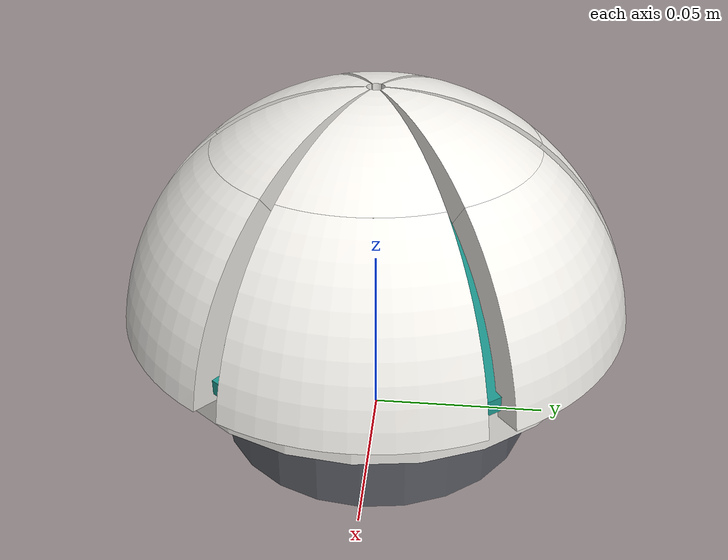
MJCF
<mujoco model="bloom"><compiler angle="radian" autolimits="true" meshdir="."/>
<asset><mesh name="petal_prox" file="petal_prox.obj"/><mesh name="petal_dist" file="petal_dist.obj"/></asset>
<default><default class="bloom"><joint type="hinge" damping="0.05" armature="0.0005"/><geom condim="4" contype="1" conaffinity="2" friction="1.0 0.02 0.001" solref="0.005 1" solimp="0.9 0.97 0.001"/>
<position kp="40" kv="1.5" forcelimited="true" forcerange="-1.5 1.5"/></default></default>
<worldbody><body name="mount" childclass="bloom">
<geom type="cylinder" size="0.045 0.015" pos="0 0 0.015" rgba="0.36 0.37 0.40 1" mass="0.4"/>
<geom type="cylinder" size="0.062 0.006" pos="0 0 0.0360" rgba="0.95 0.94 0.92 1" mass="0.2"/>
<geom type="cylinder" size="0.063 0.002" pos="0 0 0.0430" rgba="0.12 0.62 0.58 1" contype="0" conaffinity="0" mass="0.001"/>
<geom name="core" type="sphere" size="0.028" pos="0 0 0.030" rgba="0.15 0.16 0.19 1" mass="0.25"/>
<site name="eye" pos="0 0 0.030" size="0.004" rgba="0.12 0.62 0.58 1"/>
<body name="p0_prox" pos="0.06932 0.00000 0.03974" euler="0 0 0.00000">
<joint name="p0_j1" axis="0 1 0" range="-0.7 1.7"/>
<geom type="mesh" mesh="petal_prox" rgba="0.95 0.94 0.92 1" mass="0.05"/>
<geom type="sphere" size="0.014" pos="-0.00567 0.00000 0.00771" rgba="0 0 0 0" mass="0.01"/>
<geom type="sphere" size="0.014" pos="-0.01216 0.00000 0.02326" rgba="0 0 0 0" mass="0.01"/>
<geom type="sphere" size="0.014" pos="-0.02238 0.00000 0.03665" rgba="0 0 0 0" mass="0.01"/>
<body name="p0_dist" pos="-0.02622 0.00000 0.04542"><joint name="p0_j2" axis="0 1 0" range="-0.6 1.2"/>
<geom type="mesh" mesh="petal_dist" rgba="0.95 0.94 0.92 1" mass="0.03"/>
<geom type="sphere" size="0.012" pos="-0.00812 0.00000 0.00081" rgba="0 0 0 0" mass="0.008"/>
<geom type="sphere" size="0.012" pos="-0.02052 0.00000 0.00686" rgba="0 0 0 0" mass="0.008"/>
<geom type="sphere" size="0.012" pos="-0.03391 0.00000 0.01020" rgba="0 0 0 0" mass="0.008"/>
<geom name="p0_tip" type="sphere" size="0.009" pos="-0.03905 0.00000 0.00270" rgba="0.12 0.62 0.58 1" mass="0.01" friction="1.2 0.02 0.001"/>
</body></body>
<body name="p1_prox" pos="0.03466 0.06003 0.03974" euler="0 0 1.04720">
<joint name="p1_j1" axis="0 1 0" range="-0.7 1.7"/>
<geom type="mesh" mesh="petal_prox" rgba="0.95 0.94 0.92 1" mass="0.05"/>
<geom type="sphere" size="0.014" pos="-0.00567 0.00000 0.00771" rgba="0 0 0 0" mass="0.01"/>
<geom type="sphere" size="0.014" pos="-0.01216 0.00000 0.02326" rgba="0 0 0 0" mass="0.01"/>
<geom type="sphere" size="0.014" pos="-0.02238 0.00000 0.03665" rgba="0 0 0 0" mass="0.01"/>
<body name="p1_dist" pos="-0.02622 0.00000 0.04542"><joint name="p1_j2" axis="0 1 0" range="-0.6 1.2"/>
<geom type="mesh" mesh="petal_dist" rgba="0.95 0.94 0.92 1" mass="0.03"/>
<geom type="sphere" size="0.012" pos="-0.00812 0.00000 0.00081" rgba="0 0 0 0" mass="0.008"/>
<geom type="sphere" size="0.012" pos="-0.02052 0.00000 0.00686" rgba="0 0 0 0" mass="0.008"/>
<geom type="sphere" size="0.012" pos="-0.03391 0.00000 0.01020" rgba="0 0 0 0" mass="0.008"/>
<geom name="p1_tip" type="sphere" size="0.009" pos="-0.03905 0.00000 0.00270" rgba="0.12 0.62 0.58 1" mass="0.01" friction="1.2 0.02 0.001"/>
</body></body>
<body name="p2_prox" pos="-0.03466 0.06003 0.03974" euler="0 0 2.09440">
<joint name="p2_j1" axis="0 1 0" range="-0.7 1.7"/>
<geom type="mesh" mesh="petal_prox" rgba="0.95 0.94 0.92 1" mass="0.05"/>
<geom type="sphere" size="0.014" pos="-0.00567 0.00000 0.00771" rgba="0 0 0 0" mass="0.01"/>
<geom type="sphere" size="0.014" pos="-0.01216 0.00000 0.02326" rgba="0 0 0 0" mass="0.01"/>
<geom type="sphere" size="0.014" pos="-0.02238 0.00000 0.03665" rgba="0 0 0 0" mass="0.01"/>
<body name="p2_dist" pos="-0.02622 0.00000 0.04542"><joint name="p2_j2" axis="0 1 0" range="-0.6 1.2"/>
<geom type="mesh" mesh="petal_dist" rgba="0.95 0.94 0.92 1" mass="0.03"/>
<geom type="sphere" size="0.012" pos="-0.00812 0.00000 0.00081" rgba="0 0 0 0" mass="0.008"/>
<geom type="sphere" size="0.012" pos="-0.02052 0.00000 0.00686" rgba="0 0 0 0" mass="0.008"/>
<geom type="sphere" size="0.012" pos="-0.03391 0.00000 0.01020" rgba="0 0 0 0" mass="0.008"/>
<geom name="p2_tip" type="sphere" size="0.009" pos="-0.03905 0.00000 0.00270" rgba="0.12 0.62 0.58 1" mass="0.01" friction="1.2 0.02 0.001"/>
</body></body>
<body name="p3_prox" pos="-0.06932 0.00000 0.03974" euler="0 0 3.14159">
<joint name="p3_j1" axis="0 1 0" range="-0.7 1.7"/>
<geom type="mesh" mesh="petal_prox" rgba="0.95 0.94 0.92 1" mass="0.05"/>
<geom type="sphere" size="0.014" pos="-0.00567 0.00000 0.00771" rgba="0 0 0 0" mass="0.01"/>
<geom type="sphere" size="0.014" pos="-0.01216 0.00000 0.02326" rgba="0 0 0 0" mass="0.01"/>
<geom type="sphere" size="0.014" pos="-0.02238 0.00000 0.03665" rgba="0 0 0 0" mass="0.01"/>
<body name="p3_dist" pos="-0.02622 0.00000 0.04542"><joint name="p3_j2" axis="0 1 0" range="-0.6 1.2"/>
<geom type="mesh" mesh="petal_dist" rgba="0.95 0.94 0.92 1" mass="0.03"/>
<geom type="sphere" size="0.012" pos="-0.00812 0.00000 0.00081" rgba="0 0 0 0" mass="0.008"/>
<geom type="sphere" size="0.012" pos="-0.02052 0.00000 0.00686" rgba="0 0 0 0" mass="0.008"/>
<geom type="sphere" size="0.012" pos="-0.03391 0.00000 0.01020" rgba="0 0 0 0" mass="0.008"/>
<geom name="p3_tip" type="sphere" size="0.009" pos="-0.03905 0.00000 0.00270" rgba="0.12 0.62 0.58 1" mass="0.01" friction="1.2 0.02 0.001"/>
</body></body>
<body name="p4_prox" pos="-0.03466 -0.06003 0.03974" euler="0 0 4.18879">
<joint name="p4_j1" axis="0 1 0" range="-0.7 1.7"/>
<geom type="mesh" mesh="petal_prox" rgba="0.95 0.94 0.92 1" mass="0.05"/>
<geom type="sphere" size="0.014" pos="-0.00567 0.00000 0.00771" rgba="0 0 0 0" mass="0.01"/>
<geom type="sphere" size="0.014" pos="-0.01216 0.00000 0.02326" rgba="0 0 0 0" mass="0.01"/>
<geom type="sphere" size="0.014" pos="-0.02238 0.00000 0.03665" rgba="0 0 0 0" mass="0.01"/>
<body name="p4_dist" pos="-0.02622 0.00000 0.04542"><joint name="p4_j2" axis="0 1 0" range="-0.6 1.2"/>
<geom type="mesh" mesh="petal_dist" rgba="0.95 0.94 0.92 1" mass="0.03"/>
<geom type="sphere" size="0.012" pos="-0.00812 0.00000 0.00081" rgba="0 0 0 0" mass="0.008"/>
<geom type="sphere" size="0.012" pos="-0.02052 0.00000 0.00686" rgba="0 0 0 0" mass="0.008"/>
<geom type="sphere" size="0.012" pos="-0.03391 0.00000 0.01020" rgba="0 0 0 0" mass="0.008"/>
<geom name="p4_tip" type="sphere" size="0.009" pos="-0.03905 0.00000 0.00270" rgba="0.12 0.62 0.58 1" mass="0.01" friction="1.2 0.02 0.001"/>
</body></body>
<body name="p5_prox" pos="0.03466 -0.06003 0.03974" euler="0 0 5.23599">
<joint name="p5_j1" axis="0 1 0" range="-0.7 1.7"/>
<geom type="mesh" mesh="petal_prox" rgba="0.95 0.94 0.92 1" mass="0.05"/>
<geom type="sphere" size="0.014" pos="-0.00567 0.00000 0.00771" rgba="0 0 0 0" mass="0.01"/>
<geom type="sphere" size="0.014" pos="-0.01216 0.00000 0.02326" rgba="0 0 0 0" mass="0.01"/>
<geom type="sphere" size="0.014" pos="-0.02238 0.00000 0.03665" rgba="0 0 0 0" mass="0.01"/>
<body name="p5_dist" pos="-0.02622 0.00000 0.04542"><joint name="p5_j2" axis="0 1 0" range="-0.6 1.2"/>
<geom type="mesh" mesh="petal_dist" rgba="0.95 0.94 0.92 1" mass="0.03"/>
<geom type="sphere" size="0.012" pos="-0.00812 0.00000 0.00081" rgba="0 0 0 0" mass="0.008"/>
<geom type="sphere" size="0.012" pos="-0.02052 0.00000 0.00686" rgba="0 0 0 0" mass="0.008"/>
<geom type="sphere" size="0.012" pos="-0.03391 0.00000 0.01020" rgba="0 0 0 0" mass="0.008"/>
<geom name="p5_tip" type="sphere" size="0.009" pos="-0.03905 0.00000 0.00270" rgba="0.12 0.62 0.58 1" mass="0.01" friction="1.2 0.02 0.001"/>
</body></body>
</body></worldbody><actuator><position name="p0_a1" class="bloom" joint="p0_j1"/><position name="p0_a2" class="bloom" joint="p0_j2"/><position name="p1_a1" class="bloom" joint="p1_j1"/><position name="p1_a2" class="bloom" joint="p1_j2"/><position name="p2_a1" class="bloom" joint="p2_j1"/><position name="p2_a2" class="bloom" joint="p2_j2"/><position name="p3_a1" class="bloom" joint="p3_j1"/><position name="p3_a2" class="bloom" joint="p3_j2"/><position name="p4_a1" class="bloom" joint="p4_j1"/><position name="p4_a2" class="bloom" joint="p4_j2"/><position name="p5_a1" class="bloom" joint="p5_j1"/><position name="p5_a2" class="bloom" joint="p5_j2"/></actuator></mujoco>
